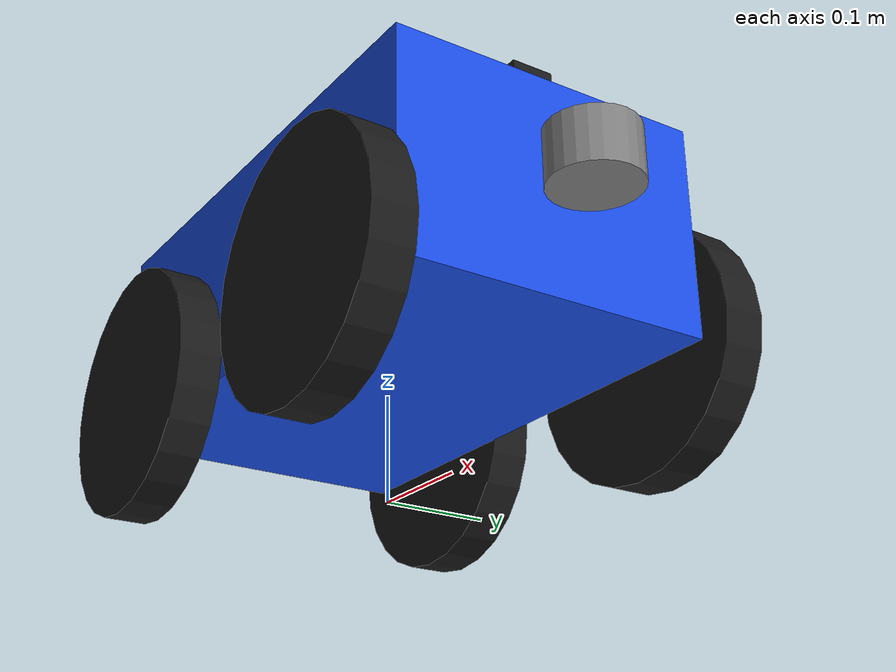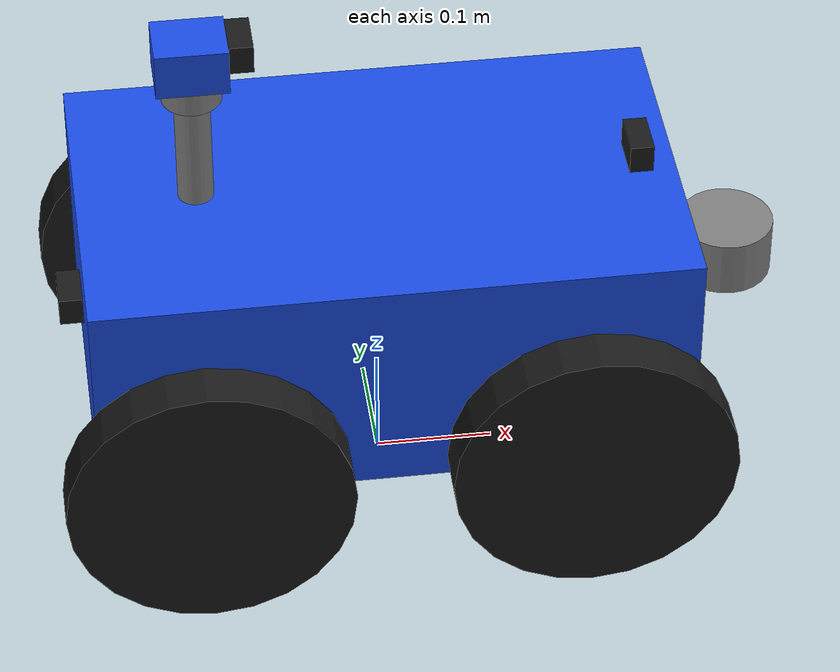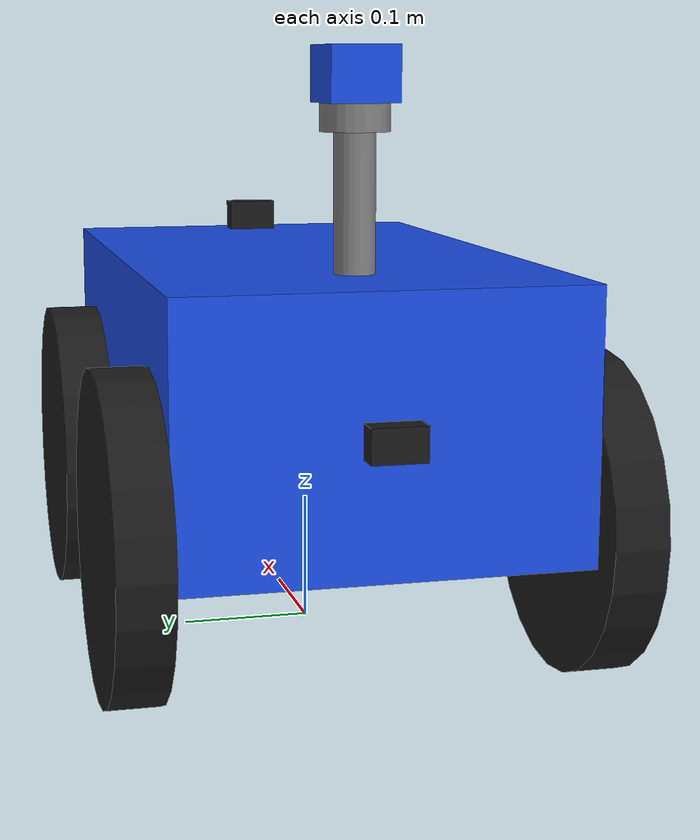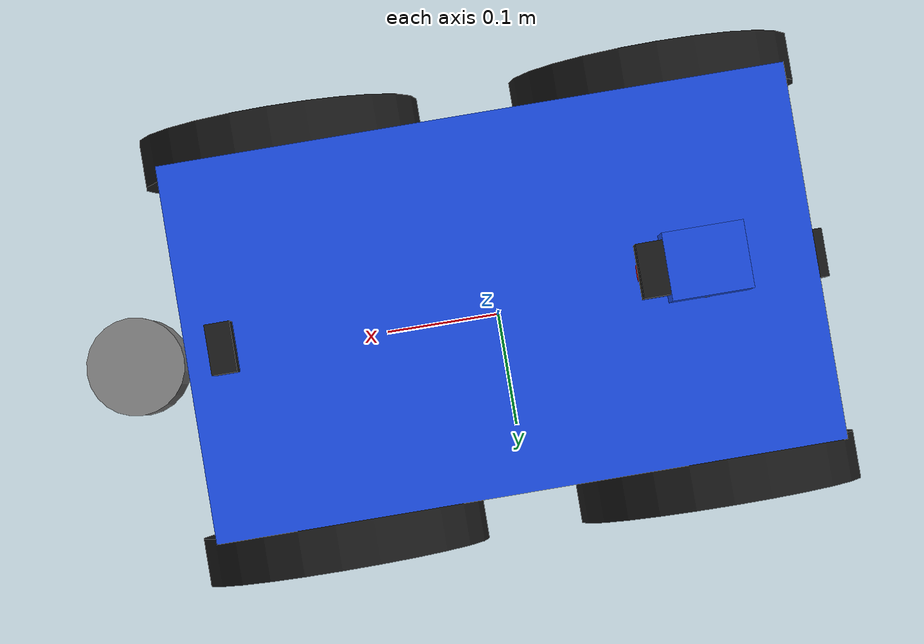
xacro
<?xml version="1.0"?>
<!--
  UGV robot modeli (xacro).
  Olculer asagidaki property'lerden degistirilebilir; atalet degerleri otomatik hesaplanir.
  Kontrol:  xacro ugv.urdf.xacro > /tmp/ugv.urdf && check_urdf /tmp/ugv.urdf
-->
<robot name="ugv" xmlns:xacro="http://www.ros.org/wiki/xacro">

  <!-- DiffDrive'in dinledigi hiz topic'i. Parkurda su fizigi node'u araya girer:
       /cmd_vel -> water_physics -> /cmd_vel_gz -> Gazebo -->
  <xacro:arg name="cmd_vel_topic" default="/cmd_vel"/>

  <!-- ================= Olculer (metre / kg) ================= -->
  <xacro:property name="base_length" value="0.5"/>
  <xacro:property name="base_width"  value="0.3"/>
  <xacro:property name="base_height" value="0.2"/>
  <xacro:property name="base_mass"   value="5.0"/>
  <xacro:property name="base_z"      value="0.20"/>

  <!-- Tekerlek yaricapi 12 cm: bir tekerlek pratikte yaricapinin yarisi kadar yuksek bir
       basamaga tirmanabilir; 6 cm'lik dik engel icin en az 12 cm gerekir. -->
  <xacro:property name="wheel_radius" value="0.12"/>
  <xacro:property name="wheel_length" value="0.04"/>
  <xacro:property name="wheel_mass"   value="0.5"/>
  <!-- Tekerleklerin base_link'e gore konumu -->
  <xacro:property name="wheel_x" value="0.16"/>
  <xacro:property name="wheel_y" value="0.17"/>
  <xacro:property name="wheel_z" value="${wheel_radius}"/>

  <xacro:include filename="$(find ugv_description)/urdf/inertial_macros.xacro"/>
  <xacro:include filename="$(find ugv_description)/urdf/lidar.xacro"/>
  <xacro:include filename="$(find ugv_description)/urdf/camera.xacro"/>
  <xacro:include filename="$(find ugv_description)/urdf/aim_turret.xacro"/>
  <xacro:include filename="$(find ugv_description)/urdf/ugv.gazebo.xacro"/>

  <!-- ================= Malzemeler ================= -->
  <material name="blue">
    <color rgba="0.1 0.3 0.9 1.0"/>
  </material>
  <material name="black">
    <color rgba="0.1 0.1 0.1 1.0"/>
  </material>
  <material name="gray">
    <color rgba="0.5 0.5 0.5 1.0"/>
  </material>

  <!-- ================= Govde ================= -->
  <link name="base_link">
    <visual>
      <origin xyz="0 0 ${base_z}" rpy="0 0 0"/>
      <geometry>
        <box size="${base_length} ${base_width} ${base_height}"/>
      </geometry>
      <material name="blue"/>
    </visual>
    <collision>
      <origin xyz="0 0 ${base_z}" rpy="0 0 0"/>
      <geometry>
        <box size="${base_length} ${base_width} ${base_height}"/>
      </geometry>
    </collision>
    <xacro:box_inertia m="${base_mass}" x="${base_length}" y="${base_width}" z="${base_height}"
                       xyz="0 0 ${base_z}"/>
  </link>

  <!-- ================= Tekerlekler ================= -->
  <xacro:macro name="wheel" params="name x y">
    <link name="${name}_wheel">
      <visual>
        <origin xyz="0 0 0" rpy="${pi/2} 0 0"/>
        <geometry>
          <cylinder radius="${wheel_radius}" length="${wheel_length}"/>
        </geometry>
        <material name="black"/>
      </visual>
      <collision>
        <origin xyz="0 0 0" rpy="${pi/2} 0 0"/>
        <geometry>
          <cylinder radius="${wheel_radius}" length="${wheel_length}"/>
        </geometry>
      </collision>
      <xacro:wheel_inertia m="${wheel_mass}" r="${wheel_radius}" h="${wheel_length}"/>
    </link>

    <joint name="${name}_wheel_joint" type="continuous">
      <parent link="base_link"/>
      <child link="${name}_wheel"/>
      <origin xyz="${x} ${y} ${wheel_z}" rpy="0 0 0"/>
      <axis xyz="0 1 0"/>
    </joint>

    <gazebo reference="${name}_wheel">
      <mu1>1.2</mu1>
      <mu2>1.2</mu2>
    </gazebo>
  </xacro:macro>

  <xacro:wheel name="right_front" x="${wheel_x}"  y="${-wheel_y}"/>
  <xacro:wheel name="right_back"  x="${-wheel_x}" y="${-wheel_y}"/>
  <xacro:wheel name="left_front"  x="${wheel_x}"  y="${wheel_y}"/>
  <xacro:wheel name="left_back"   x="${-wheel_x}" y="${wheel_y}"/>

  <!-- ================= Sensorler ================= -->
  <!-- LIDAR on tamponda, yerden 20 cm: parkurdaki koniler (31 cm), kayar engel ve bariyerler
       (32 cm) tarama duzleminin icinde kalir. -->
  <xacro:lidar parent="base_link" xyz="${base_length/2 + 0.05} 0 ${base_z}"/>

  <!-- IMU: govdenin ortasinda. Yon (otonom kosuda konum tahmini) ve egim (rampa/havuz algilama) -->
  <link name="imu_link">
    <xacro:box_inertia m="0.01" x="0.02" y="0.02" z="0.01"/>
  </link>
  <joint name="imu_joint" type="fixed">
    <parent link="base_link"/>
    <child link="imu_link"/>
    <origin xyz="0 0 ${base_z}" rpy="0 0 0"/>
  </joint>
  <gazebo reference="imu_link">
    <sensor name="imu_sensor" type="imu">
      <always_on>true</always_on>
      <update_rate>50</update_rate>
      <topic>/imu</topic>
      <ignition_frame_id>imu_link</ignition_frame_id>
    </sensor>
  </gazebo>

  <!-- Surus kameralari (sartname 6.12: ileri ve geri surus kamerasi) -->
  <xacro:camera short="front" parent="base_link" hfov="1.2"
                xyz="${base_length/2 - 0.03} 0 ${base_z + base_height/2 + 0.0125}" rpy="0 0 0"/>
  <xacro:camera short="rear" parent="base_link" hfov="1.2"
                xyz="${-base_length/2 - 0.01} 0 ${base_z}" rpy="0 0 ${pi}"/>

  <!-- Nisan tareti + nisan kamerasi + lazer (LIDAR'in arkasinda) -->
  <xacro:aim_turret parent="base_link" x="-0.15" z_base="${base_z + base_height/2}"/>

  <!-- ================= Gazebo eklentileri ================= -->
  <xacro:ugv_gazebo wheel_separation="${2*wheel_y}" wheel_radius="${wheel_radius}"
                    cmd_vel_topic="$(arg cmd_vel_topic)"/>

</robot>

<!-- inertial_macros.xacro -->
<!-- Basit geometriler icin atalet (inertia) makrolari -->
<robot xmlns:xacro="http://www.ros.org/wiki/xacro">

  <!-- Dikdortgen kutu: ixx = m/12 (y^2 + z^2) ... -->
  <xacro:macro name="box_inertia" params="m x y z xyz:='0 0 0'">
    <inertial>
      <origin xyz="${xyz}" rpy="0 0 0"/>
      <mass value="${m}"/>
      <inertia ixx="${m/12.0*(y*y + z*z)}" ixy="0" ixz="0"
               iyy="${m/12.0*(x*x + z*z)}" iyz="0"
               izz="${m/12.0*(x*x + y*y)}"/>
    </inertial>
  </xacro:macro>

  <!-- Ekseni z olan silindir -->
  <xacro:macro name="cylinder_inertia" params="m r h">
    <inertial>
      <mass value="${m}"/>
      <inertia ixx="${m/12.0*(3*r*r + h*h)}" ixy="0" ixz="0"
               iyy="${m/12.0*(3*r*r + h*h)}" iyz="0"
               izz="${m/2.0*r*r}"/>
    </inertial>
  </xacro:macro>

  <!-- Tekerlek: ekseni y yonunde olan silindir -->
  <xacro:macro name="wheel_inertia" params="m r h">
    <inertial>
      <mass value="${m}"/>
      <inertia ixx="${m/12.0*(3*r*r + h*h)}" ixy="0" ixz="0"
               iyy="${m/2.0*r*r}" iyz="0"
               izz="${m/12.0*(3*r*r + h*h)}"/>
    </inertial>
  </xacro:macro>

</robot>

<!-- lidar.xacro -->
<!-- 2D LIDAR: link + joint + Gazebo Fortress gpu_lidar sensoru -->
<robot xmlns:xacro="http://www.ros.org/wiki/xacro">

  <xacro:macro name="lidar" params="parent xyz">
    <link name="lidar_link">
      <visual>
        <geometry>
          <cylinder radius="0.04" length="0.05"/>
        </geometry>
        <material name="gray"/>
      </visual>
      <collision>
        <geometry>
          <cylinder radius="0.04" length="0.05"/>
        </geometry>
      </collision>
      <xacro:cylinder_inertia m="0.1" r="0.04" h="0.05"/>
    </link>

    <joint name="lidar_joint" type="fixed">
      <parent link="${parent}"/>
      <child link="lidar_link"/>
      <origin xyz="${xyz}" rpy="0 0 0"/>
    </joint>

    <gazebo reference="lidar_link">
      <sensor name="lidar_sensor" type="gpu_lidar">
        <pose>0 0 0 0 0 0</pose>
        <topic>/scan</topic>
        <ignition_frame_id>lidar_link</ignition_frame_id>
        <always_on>true</always_on>
        <visualize>true</visualize>
        <update_rate>10</update_rate>
        <lidar>
          <scan>
            <horizontal>
              <!-- +-90 derece: on tamponda; daha genis acida on tekerlekler gorunur -->
              <samples>181</samples>
              <resolution>1</resolution>
              <min_angle>-1.5708</min_angle>
              <max_angle>1.5708</max_angle>
            </horizontal>
          </scan>
          <range>
            <min>0.12</min>
            <max>10.0</max>
            <resolution>0.01</resolution>
          </range>
        </lidar>
      </sensor>
    </gazebo>
  </xacro:macro>

</robot>

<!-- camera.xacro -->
<robot xmlns:xacro="http://www.ros.org/wiki/xacro">

  <xacro:macro name="camera" params="short parent xyz rpy hfov width:=640 height:=480 rate:=15">
    <link name="${short}_camera_link">
      <visual>
        <geometry><box size="0.02 0.04 0.025"/></geometry>
        <material name="black"/>
      </visual>
      <collision>
        <geometry><box size="0.02 0.04 0.025"/></geometry>
      </collision>
      <xacro:box_inertia m="0.02" x="0.02" y="0.04" z="0.025"/>
    </link>

    <joint name="${short}_camera_joint" type="fixed">
      <parent link="${parent}"/>
      <child link="${short}_camera_link"/>
      <origin xyz="${xyz}" rpy="${rpy}"/>
    </joint>

    <link name="${short}_camera_optical_frame"/>
    <joint name="${short}_camera_optical_joint" type="fixed">
      <parent link="${short}_camera_link"/>
      <child link="${short}_camera_optical_frame"/>
      <origin xyz="0 0 0" rpy="${-pi/2} 0 ${-pi/2}"/>
    </joint>

    <gazebo reference="${short}_camera_link">
      <sensor name="${short}_camera" type="camera">
        <always_on>true</always_on>
        <update_rate>${rate}</update_rate>
        <visualize>false</visualize>
        <topic>/camera/${short}/image_raw</topic>
        <ignition_frame_id>${short}_camera_optical_frame</ignition_frame_id>
        <camera>
          <horizontal_fov>${hfov}</horizontal_fov>
          <image>
            <width>${width}</width>
            <height>${height}</height>
            <format>R8G8B8</format>
          </image>
          <clip>
            <near>0.05</near>
            <far>50.0</far>
          </clip>
          <noise>
            <type>gaussian</type>
            <mean>0.0</mean>
            <stddev>0.007</stddev>
          </noise>
        </camera>
      </sensor>
    </gazebo>
  </xacro:macro>

</robot>

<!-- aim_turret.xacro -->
<robot xmlns:xacro="http://www.ros.org/wiki/xacro">

  <xacro:macro name="aim_turret" params="parent x z_base mast_height:=0.10">

    <!-- Direk -->
    <link name="aim_mast_link">
      <visual>
        <origin xyz="0 0 ${mast_height/2}"/>
        <geometry><cylinder radius="0.015" length="${mast_height}"/></geometry>
        <material name="gray"/>
      </visual>
      <collision>
        <origin xyz="0 0 ${mast_height/2}"/>
        <geometry><cylinder radius="0.015" length="${mast_height}"/></geometry>
      </collision>
      <xacro:cylinder_inertia m="0.05" r="0.015" h="${mast_height}"/>
    </link>
    <joint name="aim_mast_joint" type="fixed">
      <parent link="${parent}"/>
      <child link="aim_mast_link"/>
      <origin xyz="${x} 0 ${z_base}"/>
    </joint>

    <!-- Pan: z ekseni etrafinda donus -->
    <link name="aim_pan_link">
      <visual>
        <origin xyz="0 0 0.01"/>
        <geometry><cylinder radius="0.025" length="0.02"/></geometry>
        <material name="gray"/>
      </visual>
      <collision>
        <origin xyz="0 0 0.01"/>
        <geometry><cylinder radius="0.025" length="0.02"/></geometry>
      </collision>
      <xacro:cylinder_inertia m="0.1" r="0.025" h="0.02"/>
    </link>
    <joint name="aim_pan_joint" type="revolute">
      <parent link="aim_mast_link"/>
      <child link="aim_pan_link"/>
      <origin xyz="0 0 ${mast_height}"/>
      <axis xyz="0 0 1"/>
      <limit lower="${-0.9*pi}" upper="${0.9*pi}" effort="2.0" velocity="2.0"/>
      <dynamics damping="0.01"/>
    </joint>

    <!-- Tilt: y ekseni etrafinda egilme (pozitif = asagi) -->
    <link name="aim_tilt_link">
      <visual>
        <geometry><box size="0.06 0.05 0.04"/></geometry>
        <material name="blue"/>
      </visual>
      <collision>
        <geometry><box size="0.06 0.05 0.04"/></geometry>
      </collision>
      <xacro:box_inertia m="0.1" x="0.06" y="0.05" z="0.04"/>
    </link>
    <joint name="aim_tilt_joint" type="revolute">
      <parent link="aim_pan_link"/>
      <child link="aim_tilt_link"/>
      <origin xyz="0 0 0.04"/>
      <axis xyz="0 1 0"/>
      <limit lower="-0.6" upper="0.6" effort="2.0" velocity="2.0"/>
      <dynamics damping="0.01"/>
    </joint>

    <!-- Nisan kamerasi: dar gorus acisi (~14 derece) uzaktaki hedef icin -->
    <xacro:camera short="aim" parent="aim_tilt_link" xyz="0.04 0 0.008" rpy="0 0 0"
                  hfov="0.25" rate="15"/>

    <!-- Lazer isaretleyici (simdilik sadece gorsel; isin cikis noktasi = laser_link) -->
    <link name="laser_link">
      <visual>
        <origin xyz="0.005 0 0" rpy="0 ${pi/2} 0"/>
        <geometry><cylinder radius="0.006" length="0.03"/></geometry>
        <material name="red">
          <color rgba="0.9 0.05 0.05 1.0"/>
        </material>
      </visual>
      <xacro:cylinder_inertia m="0.01" r="0.006" h="0.03"/>
    </link>
    <joint name="laser_joint" type="fixed">
      <parent link="aim_tilt_link"/>
      <child link="laser_link"/>
      <origin xyz="0.03 0 -0.012"/>
    </joint>

    <!-- Pozisyon kontrolculeri (PID, kuvvet tabanli) -->
    <gazebo>
      <plugin filename="ignition-gazebo-joint-position-controller-system"
              name="ignition::gazebo::systems::JointPositionController">
        <joint_name>aim_pan_joint</joint_name>
        <topic>/aim/pan_cmd</topic>
        <p_gain>2.0</p_gain>
        <i_gain>0.0</i_gain>
        <d_gain>0.05</d_gain>
        <cmd_max>2.0</cmd_max>
        <cmd_min>-2.0</cmd_min>
      </plugin>
    </gazebo>
    <gazebo>
      <plugin filename="ignition-gazebo-joint-position-controller-system"
              name="ignition::gazebo::systems::JointPositionController">
        <joint_name>aim_tilt_joint</joint_name>
        <topic>/aim/tilt_cmd</topic>
        <p_gain>2.0</p_gain>
        <i_gain>0.0</i_gain>
        <d_gain>0.05</d_gain>
        <cmd_max>2.0</cmd_max>
        <cmd_min>-2.0</cmd_min>
      </plugin>
    </gazebo>
  </xacro:macro>

</robot>
